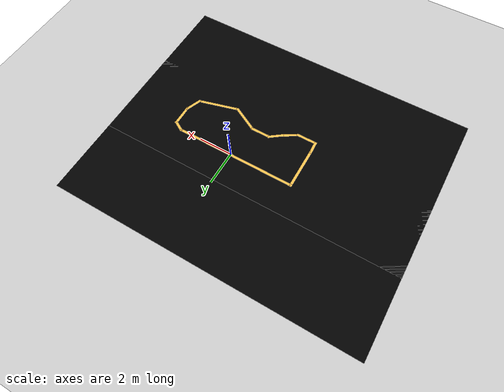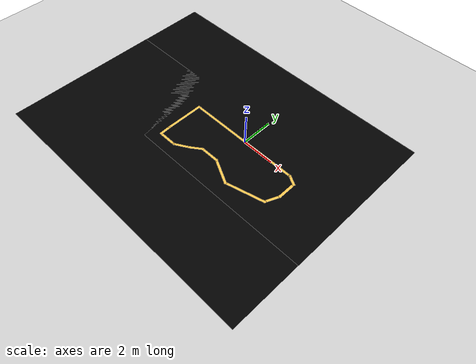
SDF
<sdf version="1.7">
 <world name="default">
  <light name="sun" type="directional">
   <pose>0 0 10 0 -0 0</pose>
   <diffuse>0.8 0.8 0.8 1</diffuse>
   <specular>0.2 0.2 0.2 1</specular>
   <attenuation>
    <range>1000</range>
    <constant>0.9</constant>
    <linear>0.01</linear>
    <quadratic>0.001</quadratic>
   </attenuation>
   <direction>-0.5 0.1 -0.9</direction>
   <spot><inner_angle>0</inner_angle><outer_angle>0</outer_angle><falloff>0</falloff></spot>
  </light>
  <model name="ground_plane">
   <static>1</static>
   <link name="link">
    <collision name="collision">
     <geometry><plane><normal>0 0 1</normal><size>100 100</size></plane></geometry>
     <surface>
      <contact><collide_bitmask>65535</collide_bitmask></contact>
      <friction><ode><mu>100</mu><mu2>50</mu2></ode></friction>
     </surface>
    </collision>
    <visual name="visual">
     <cast_shadows>0</cast_shadows>
     <geometry><plane><normal>0 0 1</normal><size>100 100</size></plane></geometry>
     <material>
      <script><uri>file://media/materials/scripts/gazebo.material</uri><name>Gazebo/Grey</name></script>
     </material>
    </visual>
   </link>
  </model>
  <gravity>0 0 -9.8</gravity>
  <magnetic_field>6e-06 2.3e-05 -4.2e-05</magnetic_field>
  <atmosphere type="adiabatic"/>
  <physics type="ode">
   <max_step_size>0.001</max_step_size>
   <real_time_factor>1</real_time_factor>
   <real_time_update_rate>1000</real_time_update_rate>
  </physics>
  <scene><ambient>0.4 0.4 0.4 1</ambient><background>0.7 0.7 0.7 1</background><shadows>1</shadows></scene>
  <spherical_coordinates>
   <surface_model>EARTH_WGS84</surface_model>
   <latitude_deg>0</latitude_deg>
   <longitude_deg>0</longitude_deg>
   <elevation>0</elevation>
   <heading_deg>0</heading_deg>
  </spherical_coordinates>
  <model name="black_rect">
   <pose>-1.91064 1.26424 0 0 -0 0</pose>
   <link name="Wall_9">
    <collision name="Wall_9_Collision"><geometry><box><size>18 10 0</size></box></geometry></collision>
    <visual name="Wall_9_Visual">
     <geometry><box><size>18 10 0</size></box></geometry>
     <material>
      <script>
       <uri>model://black_rect/materials/scripts</uri>
       <uri>model://black_rect/materials/textures</uri>
       <name>black_rectMat/Diffuse</name>
      </script>
      <ambient>0 0 0 1</ambient>
     </material>
     <meta><layer>0</layer></meta>
    </visual>
   </link>
   <static>1</static>
  </model>
  <model name="black_rect_0">
   <pose>-1.9165 -3.16989 0 0 -0 0</pose>
   <link name="Wall_9">
    <collision name="Wall_9_Collision"><geometry><box><size>18 10 0</size></box></geometry></collision>
    <visual name="Wall_9_Visual">
     <geometry><box><size>18 10 0</size></box></geometry>
     <material>
      <script>
       <uri>model://black_rect/materials/scripts</uri>
       <uri>model://black_rect/materials/textures</uri>
       <name>black_rectMat/Diffuse</name>
      </script>
      <ambient>0 0 0 1</ambient>
     </material>
     <meta><layer>0</layer></meta>
    </visual>
   </link>
   <static>1</static>
  </model>
  <model name="track0">
   <pose>0.033534 -1.05113 0 0 -0 0</pose>
   <link name="Wall_0">
    <collision name="Wall_0_Collision">
     <geometry><box><size>2.50002 0.15 0.00</size></box></geometry>
     <pose>0 0 0.0005 0 -0 0</pose>
    </collision>
    <visual name="Wall_0_Visual">
     <pose>0 0 0.0005 0 -0 0</pose>
     <geometry><box><size>2.50002 0.15 0.00</size></box></geometry>
     <material>
      <script><uri>file://media/materials/scripts/gazebo.material</uri><name>Gazebo/Grey</name></script>
      <ambient>1 0.764706 0.305882 1</ambient>
     </material>
     <meta><layer>0</layer></meta>
    </visual>
    <pose>-3.83838 -0.083558 0 0 -0 1.57505</pose>
   </link>
   <link name="Wall_1">
    <collision name="Wall_1_Collision">
     <geometry><box><size>7.28001 0.15 0.00</size></box></geometry>
     <pose>0 0 0.0005 0 -0 0</pose>
    </collision>
    <visual name="Wall_1_Visual">
     <pose>0 0 0.0005 0 -0 0</pose>
     <geometry><box><size>7.28001 0.15 0.00</size></box></geometry>
     <material>
      <script><uri>file://media/materials/scripts/gazebo.material</uri><name>Gazebo/Grey</name></script>
      <ambient>1 0.764706 0.305882 1</ambient>
     </material>
     <meta><layer>0</layer></meta>
    </visual>
    <pose>-0.278375 1.08644 0 0 -0 -0.00403</pose>
   </link>
   <link name="Wall_10">
    <collision name="Wall_10_Collision">
     <geometry><box><size>1.25 0.15 0.00</size></box></geometry>
     <pose>0 0 0.0005 0 -0 0</pose>
    </collision>
    <visual name="Wall_10_Visual">
     <pose>0 0 0.0005 0 -0 0</pose>
     <geometry><box><size>1.25 0.15 0.00</size></box></geometry>
     <material>
      <script><uri>file://media/materials/scripts/gazebo.material</uri><name>Gazebo/Grey</name></script>
      <ambient>1 0.764706 0.305882 1</ambient>
     </material>
     <meta><layer>0</layer></meta>
    </visual>
    <pose>-3.25137 -1.91856 0 0 -0 3.14159</pose>
   </link>
   <link name="Wall_13">
    <collision name="Wall_13_Collision">
     <geometry><box><size>0.810775 0.15 0.00</size></box></geometry>
     <pose>0 0 0.0005 0 -0 0</pose>
    </collision>
    <visual name="Wall_13_Visual">
     <pose>0 0 0.0005 0 -0 0</pose>
     <geometry><box><size>0.810775 0.15 0.00</size></box></geometry>
     <material>
      <script><uri>file://media/materials/scripts/gazebo.material</uri><name>Gazebo/Grey</name></script>
      <ambient>1 0.764706 0.305882 1</ambient>
     </material>
     <meta><layer>0</layer></meta>
    </visual>
    <pose>-3.81738 -1.58856 0 0 -0 1.61924</pose>
   </link>
   <link name="Wall_2">
    <collision name="Wall_2_Collision">
     <geometry><box><size>0.758681 0.15 0.00</size></box></geometry>
     <pose>0 0 0.0005 0 -0 0</pose>
    </collision>
    <visual name="Wall_2_Visual">
     <pose>0 0 0.0005 0 -0 0</pose>
     <geometry><box><size>0.758681 0.15 0.00</size></box></geometry>
     <material>
      <script><uri>file://media/materials/scripts/gazebo.material</uri><name>Gazebo/Grey</name></script>
      <ambient>1 0.764706 0.305882 1</ambient>
     </material>
     <meta><layer>0</layer></meta>
    </visual>
    <pose>3.55163 0.931442 0 0 -0 -0.515073</pose>
   </link>
   <link name="Wall_3">
    <collision name="Wall_3_Collision">
     <geometry><box><size>1.25 0.15 0.00</size></box></geometry>
     <pose>0 0 0.0005 0 -0 0</pose>
    </collision>
    <visual name="Wall_3_Visual">
     <pose>0 0 0.0005 0 -0 0</pose>
     <geometry><box><size>1.25 0.15 0.00</size></box></geometry>
     <material>
      <script><uri>file://media/materials/scripts/gazebo.material</uri><name>Gazebo/Grey</name></script>
      <ambient>1 0.764706 0.305882 1</ambient>
     </material>
     <meta><layer>0</layer></meta>
    </visual>
    <pose>3.81663 0.231442 0 0 -0 -1.5708</pose>
   </link>
   <link name="Wall_4">
    <collision name="Wall_4_Collision">
     <geometry><box><size>1.03521 0.15 0.00</size></box></geometry>
     <pose>0 0 0.0005 0 -0 0</pose>
    </collision>
    <visual name="Wall_4_Visual">
     <pose>0 0 0.0005 0 -0 0</pose>
     <geometry><box><size>1.03521 0.15 0.00</size></box></geometry>
     <material>
      <script><uri>file://media/materials/scripts/gazebo.material</uri><name>Gazebo/Grey</name></script>
      <ambient>1 0.764706 0.305882 1</ambient>
     </material>
     <meta><layer>0</layer></meta>
    </visual>
    <pose>3.65112 -0.729058 0 0 -0 -1.95403</pose>
   </link>
   <link name="Wall_5">
    <collision name="Wall_5_Collision">
     <geometry><box><size>2.50001 0.15 0.00</size></box></geometry>
     <pose>0 0 0.0005 0 -0 0</pose>
    </collision>
    <visual name="Wall_5_Visual">
     <pose>0 0 0.0005 0 -0 0</pose>
     <geometry><box><size>2.50001 0.15 0.00</size></box></geometry>
     <material>
      <script><uri>file://media/materials/scripts/gazebo.material</uri><name>Gazebo/Grey</name></script>
      <ambient>1 0.764706 0.305882 1</ambient>
     </material>
     <meta><layer>0</layer></meta>
    </visual>
    <pose>2.35062 -1.44356 0 0 -0 -2.87989</pose>
   </link>
   <link name="Wall_6">
    <collision name="Wall_6_Collision">
     <geometry><box><size>1.76154 0.15 0.00</size></box></geometry>
     <pose>0 0 0.0005 0 -0 0</pose>
    </collision>
    <visual name="Wall_6_Visual">
     <pose>0 0 0.0005 0 -0 0</pose>
     <geometry><box><size>1.76154 0.15 0.00</size></box></geometry>
     <material>
      <script><uri>file://media/materials/scripts/gazebo.material</uri><name>Gazebo/Grey</name></script>
      <ambient>1 0.764706 0.305882 1</ambient>
     </material>
     <meta><layer>0</layer></meta>
    </visual>
    <pose>0.501125 -1.37506 0 0 -0 2.66102</pose>
   </link>
   <link name="Wall_7">
    <collision name="Wall_7_Collision">
     <geometry><box><size>1.25 0.15 0.00</size></box></geometry>
     <pose>0 0 0.0005 0 -0 0</pose>
    </collision>
    <visual name="Wall_7_Visual">
     <pose>0 0 0.0005 0 -0 0</pose>
     <geometry><box><size>1.25 0.15 0.00</size></box></geometry>
     <material>
      <script><uri>file://media/materials/scripts/gazebo.material</uri><name>Gazebo/Grey</name></script>
      <ambient>1 0.764706 0.305882 1</ambient>
     </material>
     <meta><layer>0</layer></meta>
    </visual>
    <pose>-0.763375 -1.00256 0 0 -0 3.14159</pose>
   </link>
   <link name="Wall_8">
    <collision name="Wall_8_Collision">
     <geometry><box><size>0.910227 0.15 0.0</size></box></geometry>
     <pose>0 0 0.0005 0 -0 0</pose>
    </collision>
    <visual name="Wall_8_Visual">
     <pose>0 0 0.0005 0 -0 0</pose>
     <geometry><box><size>0.910227 0.15 0.0</size></box></geometry>
     <material>
      <script><uri>file://media/materials/scripts/gazebo.material</uri><name>Gazebo/Grey</name></script>
      <ambient>1 0.764706 0.305882 1</ambient>
     </material>
     <meta><layer>0</layer></meta>
    </visual>
    <pose>-1.61938 -1.22806 0 0 -0 -2.50651</pose>
   </link>
   <link name="Wall_9">
    <collision name="Wall_9_Collision">
     <geometry><box><size>1.05465 0.15 0.0</size></box></geometry>
     <pose>0 0 0.0005 0 -0 0</pose>
    </collision>
    <visual name="Wall_9_Visual">
     <pose>0 0 0.0005 0 -0 0</pose>
     <geometry><box><size>1.05465 0.15 0.0</size></box></geometry>
     <material>
      <script><uri>file://media/materials/scripts/gazebo.material</uri><name>Gazebo/Grey</name></script>
      <ambient>1 0.764706 0.305882 1</ambient>
     </material>
     <meta><layer>0</layer></meta>
    </visual>
    <pose>-2.31338 -1.68606 0 0 -0 -2.60174</pose>
   </link>
   <static>1</static>
  </model>
 </world>
</sdf>
